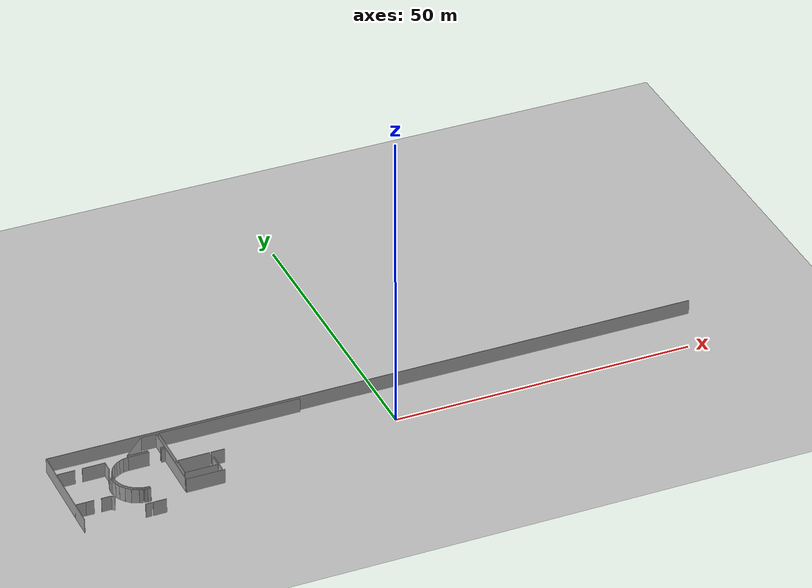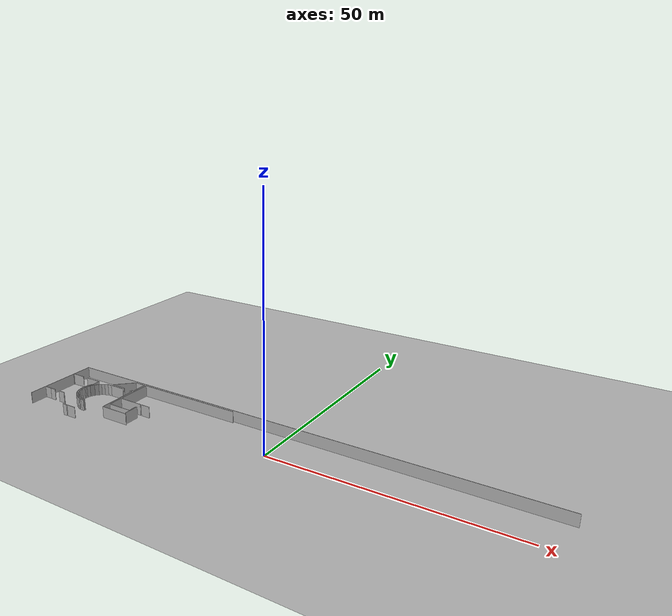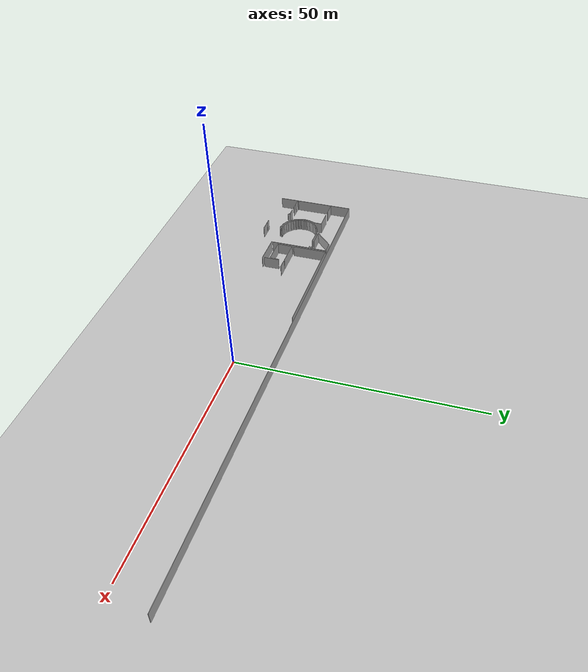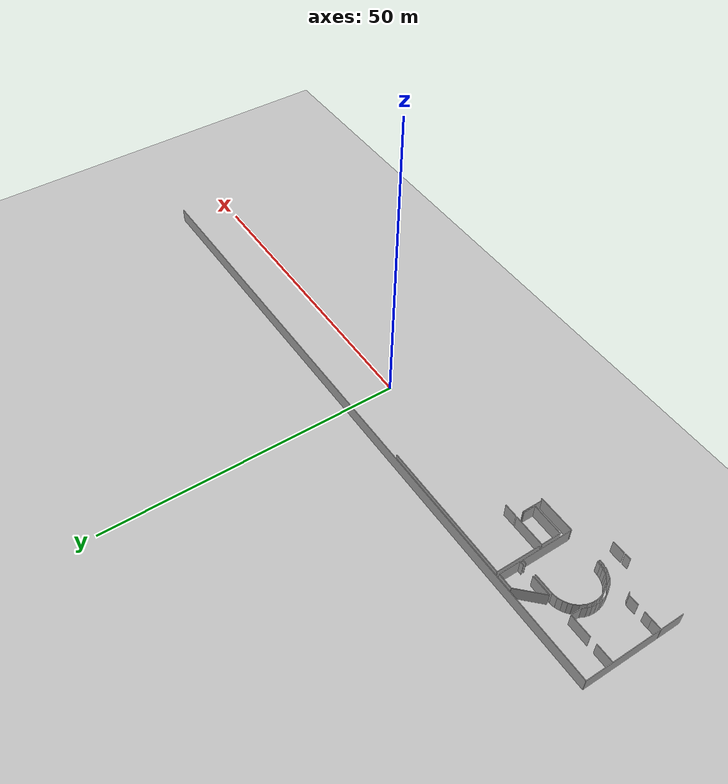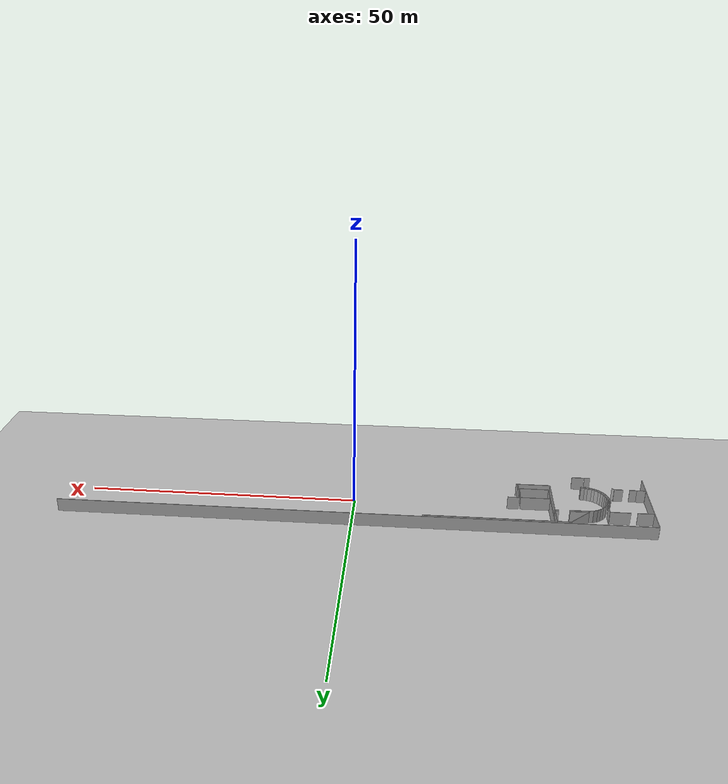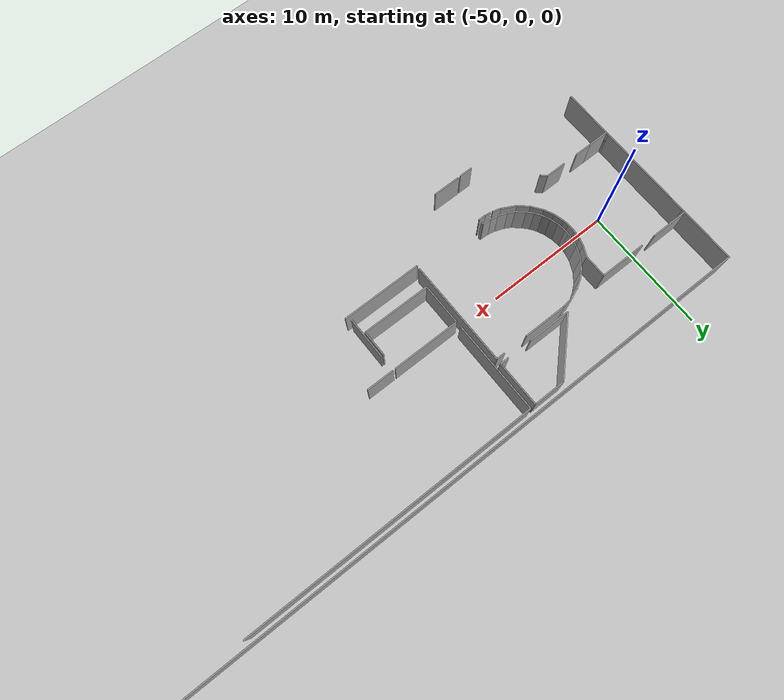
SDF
<sdf version="1.6">
 <world name="default">
  <model name="ground_plane">
   <static>1</static>
   <link name="link">
    <collision name="collision">
     <geometry><plane><normal>0 0 1</normal><size>100 100</size></plane></geometry>
     <surface><friction><ode><mu>100</mu><mu2>50</mu2></ode></friction></surface>
    </collision>
    <visual name="visual">
     <cast_shadows>0</cast_shadows>
     <geometry><plane><normal>0 0 1</normal><size>100 100</size></plane></geometry>
     <material>
      <script><uri>file://media/materials/scripts/gazebo.material</uri><name>Gazebo/Grey</name></script>
     </material>
    </visual>
   </link>
  </model>
  <model name="50041175">
   <static>1</static>
   <link name="Wall_0">
    <collision name="Wall_0_Collision">
     <geometry><box><size>1.6562662837 0.1 2.5</size></box></geometry>
     <pose>0.828133141848 0 1.25 0 0 0</pose>
    </collision>
    <visual name="Wall_0_Visual">
     <pose>0.828133141848 0 1.25 0 0 0</pose>
     <geometry><box><size>1.6562662837 0.1 2.5</size></box></geometry>
     <material>
      <script><uri>file://media/materials/scripts/gazebo.material</uri><name>Gazebo/Grey</name></script>
      <ambient>1 1 1 1</ambient>
     </material>
    </visual>
    <pose>1.6562662837 -12.7340086169 0 0 0 3.14159265359</pose>
   </link>
   <link name="Wall_1">
    <collision name="Wall_1_Collision">
     <geometry><box><size>0.231689183178 0.1 2.5</size></box></geometry>
     <pose>0.115844591589 0 1.25 0 0 0</pose>
    </collision>
    <visual name="Wall_1_Visual">
     <pose>0.115844591589 0 1.25 0 0 0</pose>
     <geometry><box><size>0.231689183178 0.1 2.5</size></box></geometry>
     <material>
      <script><uri>file://media/materials/scripts/gazebo.material</uri><name>Gazebo/Grey</name></script>
      <ambient>1 1 1 1</ambient>
     </material>
    </visual>
    <pose>0.0 -12.7340086169 0 0 0 1.57079632679</pose>
   </link>
   <link name="Wall_2">
    <collision name="Wall_2_Collision">
     <geometry><box><size>0.238806349529 0.1 2.5</size></box></geometry>
     <pose>0.119403174765 0 1.25 0 0 0</pose>
    </collision>
    <visual name="Wall_2_Visual">
     <pose>0.119403174765 0 1.25 0 0 0</pose>
     <geometry><box><size>0.238806349529 0.1 2.5</size></box></geometry>
     <material>
      <script><uri>file://media/materials/scripts/gazebo.material</uri><name>Gazebo/Grey</name></script>
      <ambient>1 1 1 1</ambient>
     </material>
    </visual>
    <pose>0.0 -4.70190511292 0 0 0 1.57079632679</pose>
   </link>
   <link name="Wall_3">
    <collision name="Wall_3_Collision">
     <geometry><box><size>2.970146029 0.1 2.5</size></box></geometry>
     <pose>1.4850730145 0 1.25 0 0 0</pose>
    </collision>
    <visual name="Wall_3_Visual">
     <pose>1.4850730145 0 1.25 0 0 0</pose>
     <geometry><box><size>2.970146029 0.1 2.5</size></box></geometry>
     <material>
      <script><uri>file://media/materials/scripts/gazebo.material</uri><name>Gazebo/Grey</name></script>
      <ambient>1 1 1 1</ambient>
     </material>
    </visual>
    <pose>0.0 -4.46309876339 0 0 0 0.0</pose>
   </link>
   <link name="Wall_4">
    <collision name="Wall_4_Collision">
     <geometry><box><size>3.68122720283 0.1 2.5</size></box></geometry>
     <pose>1.84061360141 0 1.25 0 0 0</pose>
    </collision>
    <visual name="Wall_4_Visual">
     <pose>1.84061360141 0 1.25 0 0 0</pose>
     <geometry><box><size>3.68122720283 0.1 2.5</size></box></geometry>
     <material>
      <script><uri>file://media/materials/scripts/gazebo.material</uri><name>Gazebo/Grey</name></script>
      <ambient>1 1 1 1</ambient>
     </material>
    </visual>
    <pose>4.14422429241 -4.46309876339 0 0 0 0.0</pose>
   </link>
   <link name="Wall_5">
    <collision name="Wall_5_Collision">
     <geometry><box><size>1.7719202369 0.1 2.5</size></box></geometry>
     <pose>0.88596011845 0 1.25 0 0 0</pose>
    </collision>
    <visual name="Wall_5_Visual">
     <pose>0.88596011845 0 1.25 0 0 0</pose>
     <geometry><box><size>1.7719202369 0.1 2.5</size></box></geometry>
     <material>
      <script><uri>file://media/materials/scripts/gazebo.material</uri><name>Gazebo/Grey</name></script>
      <ambient>1 1 1 1</ambient>
     </material>
    </visual>
    <pose>7.82545149524 -4.46309876339 0 0 0 -1.57079632679</pose>
   </link>
   <link name="Wall_6">
    <collision name="Wall_6_Collision">
     <geometry><box><size>0.846830648124 0.1 2.5</size></box></geometry>
     <pose>0.423415324062 0 1.25 0 0 0</pose>
    </collision>
    <visual name="Wall_6_Visual">
     <pose>0.423415324062 0 1.25 0 0 0</pose>
     <geometry><box><size>0.846830648124 0.1 2.5</size></box></geometry>
     <material>
      <script><uri>file://media/materials/scripts/gazebo.material</uri><name>Gazebo/Grey</name></script>
      <ambient>1 1 1 1</ambient>
     </material>
    </visual>
    <pose>7.82545149524 -6.23501900029 0 0 0 -2.01377018992</pose>
   </link>
   <link name="Wall_7">
    <collision name="Wall_7_Collision">
     <geometry><box><size>0.615985382137 0.1 2.5</size></box></geometry>
     <pose>0.307992691069 0 1.25 0 0 0</pose>
    </collision>
    <visual name="Wall_7_Visual">
     <pose>0.307992691069 0 1.25 0 0 0</pose>
     <geometry><box><size>0.615985382137 0.1 2.5</size></box></geometry>
     <material>
      <script><uri>file://media/materials/scripts/gazebo.material</uri><name>Gazebo/Grey</name></script>
      <ambient>1 1 1 1</ambient>
     </material>
    </visual>
    <pose>7.46247601134 -7.00011438303 0 0 0 -1.87029642608</pose>
   </link>
   <link name="Wall_8">
    <collision name="Wall_8_Collision">
     <geometry><box><size>0.661872701431 0.1 2.5</size></box></geometry>
     <pose>0.330936350716 0 1.25 0 0 0</pose>
    </collision>
    <visual name="Wall_8_Visual">
     <pose>0.330936350716 0 1.25 0 0 0</pose>
     <geometry><box><size>0.661872701431 0.1 2.5</size></box></geometry>
     <material>
      <script><uri>file://media/materials/scripts/gazebo.material</uri><name>Gazebo/Grey</name></script>
      <ambient>1 1 1 1</ambient>
     </material>
    </visual>
    <pose>7.28073408487 -7.58867862181 0 0 0 -1.72502234225</pose>
   </link>
   <link name="Wall_9">
    <collision name="Wall_9_Collision">
     <geometry><box><size>0.646685976722 0.1 2.5</size></box></geometry>
     <pose>0.323342988361 0 1.25 0 0 0</pose>
    </collision>
    <visual name="Wall_9_Visual">
     <pose>0.323342988361 0 1.25 0 0 0</pose>
     <geometry><box><size>0.646685976722 0.1 2.5</size></box></geometry>
     <material>
      <script><uri>file://media/materials/scripts/gazebo.material</uri><name>Gazebo/Grey</name></script>
      <ambient>1 1 1 1</ambient>
     </material>
    </visual>
    <pose>7.17906027986 -8.24269537257 0 0 0 -1.58199868835</pose>
   </link>
   <link name="Wall_10">
    <collision name="Wall_10_Collision">
     <geometry><box><size>0.439904652623 0.1 2.5</size></box></geometry>
     <pose>0.219952326311 0 1.25 0 0 0</pose>
    </collision>
    <visual name="Wall_10_Visual">
     <pose>0.219952326311 0 1.25 0 0 0</pose>
     <geometry><box><size>0.439904652623 0.1 2.5</size></box></geometry>
     <material>
      <script><uri>file://media/materials/scripts/gazebo.material</uri><name>Gazebo/Grey</name></script>
      <ambient>1 1 1 1</ambient>
     </material>
    </visual>
    <pose>7.17181602125 -8.88934077247 0 0 0 -1.43837843584</pose>
   </link>
   <link name="Wall_11">
    <collision name="Wall_11_Collision">
     <geometry><box><size>0.838824392635 0.1 2.5</size></box></geometry>
     <pose>0.419412196318 0 1.25 0 0 0</pose>
    </collision>
    <visual name="Wall_11_Visual">
     <pose>0.419412196318 0 1.25 0 0 0</pose>
     <geometry><box><size>0.838824392635 0.1 2.5</size></box></geometry>
     <material>
      <script><uri>file://media/materials/scripts/gazebo.material</uri><name>Gazebo/Grey</name></script>
      <ambient>1 1 1 1</ambient>
     </material>
    </visual>
    <pose>7.22989718236 -9.32539430373 0 0 0 -1.32578091653</pose>
   </link>
   <link name="Wall_12">
    <collision name="Wall_12_Collision">
     <geometry><box><size>0.809514762314 0.1 2.5</size></box></geometry>
     <pose>0.404757381157 0 1.25 0 0 0</pose>
    </collision>
    <visual name="Wall_12_Visual">
     <pose>0.404757381157 0 1.25 0 0 0</pose>
     <geometry><box><size>0.809514762314 0.1 2.5</size></box></geometry>
     <material>
      <script><uri>file://media/materials/scripts/gazebo.material</uri><name>Gazebo/Grey</name></script>
      <ambient>1 1 1 1</ambient>
     </material>
    </visual>
    <pose>7.43337188465 -10.1391660206 0 0 0 -1.13530731927</pose>
   </link>
   <link name="Wall_13">
    <collision name="Wall_13_Collision">
     <geometry><box><size>0.988325124962 0.1 2.5</size></box></geometry>
     <pose>0.494162562481 0 1.25 0 0 0</pose>
    </collision>
    <visual name="Wall_13_Visual">
     <pose>0.494162562481 0 1.25 0 0 0</pose>
     <geometry><box><size>0.988325124962 0.1 2.5</size></box></geometry>
     <material>
      <script><uri>file://media/materials/scripts/gazebo.material</uri><name>Gazebo/Grey</name></script>
      <ambient>1 1 1 1</ambient>
     </material>
    </visual>
    <pose>7.77486877725 -10.8731238006 0 0 0 -0.941981131605</pose>
   </link>
   <link name="Wall_14">
    <collision name="Wall_14_Collision">
     <geometry><box><size>0.98253685153 0.1 2.5</size></box></geometry>
     <pose>0.491268425765 0 1.25 0 0 0</pose>
    </collision>
    <visual name="Wall_14_Visual">
     <pose>0.491268425765 0 1.25 0 0 0</pose>
     <geometry><box><size>0.98253685153 0.1 2.5</size></box></geometry>
     <material>
      <script><uri>file://media/materials/scripts/gazebo.material</uri><name>Gazebo/Grey</name></script>
      <ambient>1 1 1 1</ambient>
     </material>
    </visual>
    <pose>8.35618875742 -11.6724070002 0 0 0 -0.738276218378</pose>
   </link>
   <link name="Wall_15">
    <collision name="Wall_15_Collision">
     <geometry><box><size>1.1946351515 0.1 2.5</size></box></geometry>
     <pose>0.597317575752 0 1.25 0 0 0</pose>
    </collision>
    <visual name="Wall_15_Visual">
     <pose>0.597317575752 0 1.25 0 0 0</pose>
     <geometry><box><size>1.1946351515 0.1 2.5</size></box></geometry>
     <material>
      <script><uri>file://media/materials/scripts/gazebo.material</uri><name>Gazebo/Grey</name></script>
      <ambient>1 1 1 1</ambient>
     </material>
    </visual>
    <pose>9.08290227876 -12.3336680096 0 0 0 -0.475494606704</pose>
   </link>
   <link name="Wall_16">
    <collision name="Wall_16_Collision">
     <geometry><box><size>0.620881470011 0.1 2.5</size></box></geometry>
     <pose>0.310440735005 0 1.25 0 0 0</pose>
    </collision>
    <visual name="Wall_16_Visual">
     <pose>0.310440735005 0 1.25 0 0 0</pose>
     <geometry><box><size>0.620881470011 0.1 2.5</size></box></geometry>
     <material>
      <script><uri>file://media/materials/scripts/gazebo.material</uri><name>Gazebo/Grey</name></script>
      <ambient>1 1 1 1</ambient>
     </material>
    </visual>
    <pose>10.1450122644 -12.8805459883 0 0 0 -0.282967135303</pose>
   </link>
   <link name="Wall_17">
    <collision name="Wall_17_Collision">
     <geometry><box><size>1.03326004347 0.1 2.5</size></box></geometry>
     <pose>0.516630021733 0 1.25 0 0 0</pose>
    </collision>
    <visual name="Wall_17_Visual">
     <pose>0.516630021733 0 1.25 0 0 0</pose>
     <geometry><box><size>1.03326004347 0.1 2.5</size></box></geometry>
     <material>
      <script><uri>file://media/materials/scripts/gazebo.material</uri><name>Gazebo/Grey</name></script>
      <ambient>1 1 1 1</ambient>
     </material>
    </visual>
    <pose>10.7412020386 -16.6847984952 0 0 0 3.14159265359</pose>
   </link>
   <link name="Wall_18">
    <collision name="Wall_18_Collision">
     <geometry><box><size>0.562572519334 0.1 2.5</size></box></geometry>
     <pose>0.281286259667 0 1.25 0 0 0</pose>
    </collision>
    <visual name="Wall_18_Visual">
     <pose>0.281286259667 0 1.25 0 0 0</pose>
     <geometry><box><size>0.562572519334 0.1 2.5</size></box></geometry>
     <material>
      <script><uri>file://media/materials/scripts/gazebo.material</uri><name>Gazebo/Grey</name></script>
      <ambient>1 1 1 1</ambient>
     </material>
    </visual>
    <pose>6.16905811929 -13.1409580214 0 0 0 2.35683346774</pose>
   </link>
   <link name="Wall_19">
    <collision name="Wall_19_Collision">
     <geometry><box><size>1.62500158865 0.1 2.5</size></box></geometry>
     <pose>0.812500794327 0 1.25 0 0 0</pose>
    </collision>
    <visual name="Wall_19_Visual">
     <pose>0.812500794327 0 1.25 0 0 0</pose>
     <geometry><box><size>1.62500158865 0.1 2.5</size></box></geometry>
     <material>
      <script><uri>file://media/materials/scripts/gazebo.material</uri><name>Gazebo/Grey</name></script>
      <ambient>1 1 1 1</ambient>
     </material>
    </visual>
    <pose>5.77100517265 -12.7434134438 0 0 0 3.14159265359</pose>
   </link>
   <link name="Wall_20">
    <collision name="Wall_20_Collision">
     <geometry><box><size>1.30577971029 0.1 2.5</size></box></geometry>
     <pose>0.652889855147 0 1.25 0 0 0</pose>
    </collision>
    <visual name="Wall_20_Visual">
     <pose>0.652889855147 0 1.25 0 0 0</pose>
     <geometry><box><size>1.30577971029 0.1 2.5</size></box></geometry>
     <material>
      <script><uri>file://media/materials/scripts/gazebo.material</uri><name>Gazebo/Grey</name></script>
      <ambient>1 1 1 1</ambient>
     </material>
    </visual>
    <pose>2.9620121246 -12.7434134438 0 0 0 3.13439013068</pose>
   </link>
   <link name="Wall_21">
    <collision name="Wall_21_Collision">
     <geometry><box><size>0.36281847588 0.1 2.5</size></box></geometry>
     <pose>0.18140923794 0 1.25 0 0 0</pose>
    </collision>
    <visual name="Wall_21_Visual">
     <pose>0.18140923794 0 1.25 0 0 0</pose>
     <geometry><box><size>0.36281847588 0.1 2.5</size></box></geometry>
     <material>
      <script><uri>file://media/materials/scripts/gazebo.material</uri><name>Gazebo/Grey</name></script>
      <ambient>1 1 1 1</ambient>
     </material>
    </visual>
    <pose>7.64993708933 -8.35364691229 0 0 0 1.47255674269</pose>
   </link>
   <link name="Wall_22">
    <collision name="Wall_22_Collision">
     <geometry><box><size>0.719627656 0.1 2.5</size></box></geometry>
     <pose>0.359813828 0 1.25 0 0 0</pose>
    </collision>
    <visual name="Wall_22_Visual">
     <pose>0.359813828 0 1.25 0 0 0</pose>
     <geometry><box><size>0.719627656 0.1 2.5</size></box></geometry>
     <material>
      <script><uri>file://media/materials/scripts/gazebo.material</uri><name>Gazebo/Grey</name></script>
      <ambient>1 1 1 1</ambient>
     </material>
    </visual>
    <pose>7.68552292109 -7.99257781223 0 0 0 1.34856438238</pose>
   </link>
   <link name="Wall_23">
    <collision name="Wall_23_Collision">
     <geometry><box><size>1.03548684681 0.1 2.5</size></box></geometry>
     <pose>0.517743423406 0 1.25 0 0 0</pose>
    </collision>
    <visual name="Wall_23_Visual">
     <pose>0.517743423406 0 1.25 0 0 0</pose>
     <geometry><box><size>1.03548684681 0.1 2.5</size></box></geometry>
     <material>
      <script><uri>file://media/materials/scripts/gazebo.material</uri><name>Gazebo/Grey</name></script>
      <ambient>1 1 1 1</ambient>
     </material>
    </visual>
    <pose>7.84413405691 -7.29064728086 0 0 0 1.13152208163</pose>
   </link>
   <link name="Wall_24">
    <collision name="Wall_24_Collision">
     <geometry><box><size>0.887161138428 0.1 2.5</size></box></geometry>
     <pose>0.443580569214 0 1.25 0 0 0</pose>
    </collision>
    <visual name="Wall_24_Visual">
     <pose>0.443580569214 0 1.25 0 0 0</pose>
     <geometry><box><size>0.887161138428 0.1 2.5</size></box></geometry>
     <material>
      <script><uri>file://media/materials/scripts/gazebo.material</uri><name>Gazebo/Grey</name></script>
      <ambient>1 1 1 1</ambient>
     </material>
    </visual>
    <pose>8.28450872488 -6.35346898313 0 0 0 0.8775070857</pose>
   </link>
   <link name="Wall_25">
    <collision name="Wall_25_Collision">
     <geometry><box><size>0.648414988856 0.1 2.5</size></box></geometry>
     <pose>0.324207494428 0 1.25 0 0 0</pose>
    </collision>
    <visual name="Wall_25_Visual">
     <pose>0.324207494428 0 1.25 0 0 0</pose>
     <geometry><box><size>0.648414988856 0.1 2.5</size></box></geometry>
     <material>
      <script><uri>file://media/materials/scripts/gazebo.material</uri><name>Gazebo/Grey</name></script>
      <ambient>1 1 1 1</ambient>
     </material>
    </visual>
    <pose>8.8514672801 -5.67111065923 0 0 0 0.690873512645</pose>
   </link>
   <link name="Wall_26">
    <collision name="Wall_26_Collision">
     <geometry><box><size>0.698898147814 0.1 2.5</size></box></geometry>
     <pose>0.349449073907 0 1.25 0 0 0</pose>
    </collision>
    <visual name="Wall_26_Visual">
     <pose>0.349449073907 0 1.25 0 0 0</pose>
     <geometry><box><size>0.698898147814 0.1 2.5</size></box></geometry>
     <material>
      <script><uri>file://media/materials/scripts/gazebo.material</uri><name>Gazebo/Grey</name></script>
      <ambient>1 1 1 1</ambient>
     </material>
    </visual>
    <pose>9.35119403175 -5.2579337341 0 0 0 0.531687187303</pose>
   </link>
   <link name="Wall_27">
    <collision name="Wall_27_Collision">
     <geometry><box><size>0.801340088225 0.1 2.5</size></box></geometry>
     <pose>0.400670044113 0 1.25 0 0 0</pose>
    </collision>
    <visual name="Wall_27_Visual">
     <pose>0.400670044113 0 1.25 0 0 0</pose>
     <geometry><box><size>0.801340088225 0.1 2.5</size></box></geometry>
     <material>
      <script><uri>file://media/materials/scripts/gazebo.material</uri><name>Gazebo/Grey</name></script>
      <ambient>1 1 1 1</ambient>
     </material>
    </visual>
    <pose>9.95361132646 -4.90360052362 0 0 0 0.385689814226</pose>
   </link>
   <link name="Wall_28">
    <collision name="Wall_28_Collision">
     <geometry><box><size>0.866344135107 0.1 2.5</size></box></geometry>
     <pose>0.433172067554 0 1.25 0 0 0</pose>
    </collision>
    <visual name="Wall_28_Visual">
     <pose>0.433172067554 0 1.25 0 0 0</pose>
     <geometry><box><size>0.866344135107 0.1 2.5</size></box></geometry>
     <material>
      <script><uri>file://media/materials/scripts/gazebo.material</uri><name>Gazebo/Grey</name></script>
      <ambient>1 1 1 1</ambient>
     </material>
    </visual>
    <pose>10.6960842876 -4.60213769175 0 0 0 0.143079602133</pose>
   </link>
   <link name="Wall_29">
    <collision name="Wall_29_Collision">
     <geometry><box><size>3.39959076293 0.1 2.5</size></box></geometry>
     <pose>1.69979538147 0 1.25 0 0 0</pose>
    </collision>
    <visual name="Wall_29_Visual">
     <pose>1.69979538147 0 1.25 0 0 0</pose>
     <geometry><box><size>3.39959076293 0.1 2.5</size></box></geometry>
     <material>
      <script><uri>file://media/materials/scripts/gazebo.material</uri><name>Gazebo/Grey</name></script>
      <ambient>1 1 1 1</ambient>
     </material>
    </visual>
    <pose>11.5535757406 -4.47860401866 0 0 0 0.0</pose>
   </link>
   <link name="Wall_30">
    <collision name="Wall_30_Collision">
     <geometry><box><size>0.673716050481 0.1 2.5</size></box></geometry>
     <pose>0.336858025241 0 1.25 0 0 0</pose>
    </collision>
    <visual name="Wall_30_Visual">
     <pose>0.336858025241 0 1.25 0 0 0</pose>
     <geometry><box><size>0.673716050481 0.1 2.5</size></box></geometry>
     <material>
      <script><uri>file://media/materials/scripts/gazebo.material</uri><name>Gazebo/Grey</name></script>
      <ambient>1 1 1 1</ambient>
     </material>
    </visual>
    <pose>16.9125478185 -4.47860401866 0 0 0 0.0</pose>
   </link>
   <link name="Wall_31">
    <collision name="Wall_31_Collision">
     <geometry><box><size>8.4236747455 0.1 2.5</size></box></geometry>
     <pose>4.21183737275 0 1.25 0 0 0</pose>
    </collision>
    <visual name="Wall_31_Visual">
     <pose>4.21183737275 0 1.25 0 0 0</pose>
     <geometry><box><size>8.4236747455 0.1 2.5</size></box></geometry>
     <material>
      <script><uri>file://media/materials/scripts/gazebo.material</uri><name>Gazebo/Grey</name></script>
      <ambient>1 1 1 1</ambient>
     </material>
    </visual>
    <pose>17.5862638689 -4.47860401866 0 0 0 -1.57079632679</pose>
   </link>
   <link name="Wall_32">
    <collision name="Wall_32_Collision">
     <geometry><box><size>0.180216819389 0.1 2.5</size></box></geometry>
     <pose>0.0901084096946 0 1.25 0 0 0</pose>
    </collision>
    <visual name="Wall_32_Visual">
     <pose>0.0901084096946 0 1.25 0 0 0</pose>
     <geometry><box><size>0.180216819389 0.1 2.5</size></box></geometry>
     <material>
      <script><uri>file://media/materials/scripts/gazebo.material</uri><name>Gazebo/Grey</name></script>
      <ambient>1 1 1 1</ambient>
     </material>
    </visual>
    <pose>11.9002834157 -12.9022787642 0 0 0 1.57079632679</pose>
   </link>
   <link name="Wall_33">
    <collision name="Wall_33_Collision">
     <geometry><box><size>0.659679686485 0.1 2.5</size></box></geometry>
     <pose>0.329839843242 0 1.25 0 0 0</pose>
    </collision>
    <visual name="Wall_33_Visual">
     <pose>0.329839843242 0 1.25 0 0 0</pose>
     <geometry><box><size>0.659679686485 0.1 2.5</size></box></geometry>
     <material>
      <script><uri>file://media/materials/scripts/gazebo.material</uri><name>Gazebo/Grey</name></script>
      <ambient>1 1 1 1</ambient>
     </material>
    </visual>
    <pose>11.9002834157 -12.7220619448 0 0 0 3.08762234943</pose>
   </link>
   <link name="Wall_34">
    <collision name="Wall_34_Collision">
     <geometry><box><size>0.57892062884 0.1 2.5</size></box></geometry>
     <pose>0.28946031442 0 1.25 0 0 0</pose>
    </collision>
    <visual name="Wall_34_Visual">
     <pose>0.28946031442 0 1.25 0 0 0</pose>
     <geometry><box><size>0.57892062884 0.1 2.5</size></box></geometry>
     <material>
      <script><uri>file://media/materials/scripts/gazebo.material</uri><name>Gazebo/Grey</name></script>
      <ambient>1 1 1 1</ambient>
     </material>
    </visual>
    <pose>11.2415642515 -12.686476113 0 0 0 2.95612333128</pose>
   </link>
   <link name="Wall_35">
    <collision name="Wall_35_Collision">
     <geometry><box><size>0.75556586854 0.1 2.5</size></box></geometry>
     <pose>0.37778293427 0 1.25 0 0 0</pose>
    </collision>
    <visual name="Wall_35_Visual">
     <pose>0.37778293427 0 1.25 0 0 0</pose>
     <geometry><box><size>0.75556586854 0.1 2.5</size></box></geometry>
     <material>
      <script><uri>file://media/materials/scripts/gazebo.material</uri><name>Gazebo/Grey</name></script>
      <ambient>1 1 1 1</ambient>
     </material>
    </visual>
    <pose>10.6725722202 -12.5797186177 0 0 0 2.79973414787</pose>
   </link>
   <link name="Wall_36">
    <collision name="Wall_36_Collision">
     <geometry><box><size>0.556449449577 0.1 2.5</size></box></geometry>
     <pose>0.278224724788 0 1.25 0 0 0</pose>
    </collision>
    <visual name="Wall_36_Visual">
     <pose>0.278224724788 0 1.25 0 0 0</pose>
     <geometry><box><size>0.556449449577 0.1 2.5</size></box></geometry>
     <material>
      <script><uri>file://media/materials/scripts/gazebo.material</uri><name>Gazebo/Grey</name></script>
      <ambient>1 1 1 1</ambient>
     </material>
    </visual>
    <pose>9.96072849281 -12.326423751 0 0 0 2.62040682433</pose>
   </link>
   <link name="Wall_37">
    <collision name="Wall_37_Collision">
     <geometry><box><size>0.796480954315 0.1 2.5</size></box></geometry>
     <pose>0.398240477157 0 1.25 0 0 0</pose>
    </collision>
    <visual name="Wall_37_Visual">
     <pose>0.398240477157 0 1.25 0 0 0</pose>
     <geometry><box><size>0.796480954315 0.1 2.5</size></box></geometry>
     <material>
      <script><uri>file://media/materials/scripts/gazebo.material</uri><name>Gazebo/Grey</name></script>
      <ambient>1 1 1 1</ambient>
     </material>
    </visual>
    <pose>9.47815919576 -12.0493626323 0 0 0 2.4368432702</pose>
   </link>
   <link name="Wall_38">
    <collision name="Wall_38_Collision">
     <geometry><box><size>0.595609380929 0.1 2.5</size></box></geometry>
     <pose>0.297804690464 0 1.25 0 0 0</pose>
    </collision>
    <visual name="Wall_38_Visual">
     <pose>0.297804690464 0 1.25 0 0 0</pose>
     <geometry><box><size>0.595609380929 0.1 2.5</size></box></geometry>
     <material>
      <script><uri>file://media/materials/scripts/gazebo.material</uri><name>Gazebo/Grey</name></script>
      <ambient>1 1 1 1</ambient>
     </material>
    </visual>
    <pose>8.87142076433 -11.5333680719 0 0 0 2.29958283771</pose>
   </link>
   <link name="Wall_39">
    <collision name="Wall_39_Collision">
     <geometry><box><size>0.598957380622 0.1 2.5</size></box></geometry>
     <pose>0.299478690311 0 1.25 0 0 0</pose>
    </collision>
    <visual name="Wall_39_Visual">
     <pose>0.299478690311 0 1.25 0 0 0</pose>
     <geometry><box><size>0.598957380622 0.1 2.5</size></box></geometry>
     <material>
      <script><uri>file://media/materials/scripts/gazebo.material</uri><name>Gazebo/Grey</name></script>
      <ambient>1 1 1 1</ambient>
     </material>
    </visual>
    <pose>8.47476583252 -11.089053544 0 0 0 2.16309504327</pose>
   </link>
   <link name="Wall_40">
    <collision name="Wall_40_Collision">
     <geometry><box><size>0.629272585491 0.1 2.5</size></box></geometry>
     <pose>0.314636292745 0 1.25 0 0 0</pose>
    </collision>
    <visual name="Wall_40_Visual">
     <pose>0.314636292745 0 1.25 0 0 0</pose>
     <geometry><box><size>0.629272585491 0.1 2.5</size></box></geometry>
     <material>
      <script><uri>file://media/materials/scripts/gazebo.material</uri><name>Gazebo/Grey</name></script>
      <ambient>1 1 1 1</ambient>
     </material>
    </visual>
    <pose>8.14038610627 -10.592122822 0 0 0 1.97669585645</pose>
   </link>
   <link name="Wall_41">
    <collision name="Wall_41_Collision">
     <geometry><box><size>0.627945076952 0.1 2.5</size></box></geometry>
     <pose>0.313972538476 0 1.25 0 0 0</pose>
    </collision>
    <visual name="Wall_41_Visual">
     <pose>0.313972538476 0 1.25 0 0 0</pose>
     <geometry><box><size>0.627945076952 0.1 2.5</size></box></geometry>
     <material>
      <script><uri>file://media/materials/scripts/gazebo.material</uri><name>Gazebo/Grey</name></script>
      <ambient>1 1 1 1</ambient>
     </material>
    </visual>
    <pose>7.89192074527 -10.0139801482 0 0 0 1.84965200465</pose>
   </link>
   <link name="Wall_42">
    <collision name="Wall_42_Collision">
     <geometry><box><size>0.695092077512 0.1 2.5</size></box></geometry>
     <pose>0.347546038756 0 1.25 0 0 0</pose>
    </collision>
    <visual name="Wall_42_Visual">
     <pose>0.347546038756 0 1.25 0 0 0</pose>
     <geometry><box><size>0.695092077512 0.1 2.5</size></box></geometry>
     <material>
      <script><uri>file://media/materials/scripts/gazebo.material</uri><name>Gazebo/Grey</name></script>
      <ambient>1 1 1 1</ambient>
     </material>
    </visual>
    <pose>7.71907527674 -9.41029193091 0 0 0 1.69655740741</pose>
   </link>
   <link name="Wall_43">
    <collision name="Wall_43_Collision">
     <geometry><box><size>0.367485846985 0.1 2.5</size></box></geometry>
     <pose>0.183742923492 0 1.25 0 0 0</pose>
    </collision>
    <visual name="Wall_43_Visual">
     <pose>0.183742923492 0 1.25 0 0 0</pose>
     <geometry><box><size>0.367485846985 0.1 2.5</size></box></geometry>
     <material>
      <script><uri>file://media/materials/scripts/gazebo.material</uri><name>Gazebo/Grey</name></script>
      <ambient>1 1 1 1</ambient>
     </material>
    </visual>
    <pose>7.63188998894 -8.7206893484 0 0 0 1.52166691779</pose>
   </link>
   <link name="Wall_44">
    <collision name="Wall_44_Collision">
     <geometry><box><size>3.33553626578 0.1 2.5</size></box></geometry>
     <pose>1.66776813289 0 1.25 0 0 0</pose>
    </collision>
    <visual name="Wall_44_Visual">
     <pose>1.66776813289 0 1.25 0 0 0</pose>
     <geometry><box><size>3.33553626578 0.1 2.5</size></box></geometry>
     <material>
      <script><uri>file://media/materials/scripts/gazebo.material</uri><name>Gazebo/Grey</name></script>
      <ambient>1 1 1 1</ambient>
     </material>
    </visual>
    <pose>23.5733258773 -12.8295819936 0 0 0 1.57079632679</pose>
   </link>
   <link name="Wall_45">
    <collision name="Wall_45_Collision">
     <geometry><box><size>2.18306368593 0.1 2.5</size></box></geometry>
     <pose>1.09153184296 0 1.25 0 0 0</pose>
    </collision>
    <visual name="Wall_45_Visual">
     <pose>1.09153184296 0 1.25 0 0 0</pose>
     <geometry><box><size>2.18306368593 0.1 2.5</size></box></geometry>
     <material>
      <script><uri>file://media/materials/scripts/gazebo.material</uri><name>Gazebo/Grey</name></script>
      <ambient>1 1 1 1</ambient>
     </material>
    </visual>
    <pose>23.5733258773 -8.23252799207 0 0 0 0.0</pose>
   </link>
   <link name="Wall_50">
    <collision name="Wall_50_Collision">
     <geometry><box><size>3.27859893497 0.1 2.5</size></box></geometry>
     <pose>1.63929946748 0 1.25 0 0 0</pose>
    </collision>
    <visual name="Wall_50_Visual">
     <pose>1.63929946748 0 1.25 0 0 0</pose>
     <geometry><box><size>3.27859893497 0.1 2.5</size></box></geometry>
     <material>
      <script><uri>file://media/materials/scripts/gazebo.material</uri><name>Gazebo/Grey</name></script>
      <ambient>1 1 1 1</ambient>
     </material>
    </visual>
    <pose>18.0352808103 -11.5094747277 0 0 0 1.57079632679</pose>
   </link>
   <link name="Wall_51">
    <collision name="Wall_51_Collision">
     <geometry><box><size>5.35744697076 0.1 2.5</size></box></geometry>
     <pose>2.67872348538 0 1.25 0 0 0</pose>
    </collision>
    <visual name="Wall_51_Visual">
     <pose>2.67872348538 0 1.25 0 0 0</pose>
     <geometry><box><size>5.35744697076 0.1 2.5</size></box></geometry>
     <material>
      <script><uri>file://media/materials/scripts/gazebo.material</uri><name>Gazebo/Grey</name></script>
      <ambient>1 1 1 1</ambient>
     </material>
    </visual>
    <pose>18.0352808103 -8.23087579274 0 0 0 0.0</pose>
   </link>
   <link name="Wall_52">
    <collision name="Wall_52_Collision">
     <geometry><box><size>2.0233087198 0.1 2.5</size></box></geometry>
     <pose>1.0116543599 0 1.25 0 0 0</pose>
    </collision>
    <visual name="Wall_52_Visual">
     <pose>1.0116543599 0 1.25 0 0 0</pose>
     <geometry><box><size>2.0233087198 0.1 2.5</size></box></geometry>
     <material>
      <script><uri>file://media/materials/scripts/gazebo.material</uri><name>Gazebo/Grey</name></script>
      <ambient>1 1 1 1</ambient>
     </material>
    </visual>
    <pose>23.3927277811 -9.51107609013 0 0 0 -1.57079632679</pose>
   </link>
   <link name="Wall_53">
    <collision name="Wall_53_Collision">
     <geometry><box><size>5.35750488163 0.1 2.5</size></box></geometry>
     <pose>2.67875244081 0 1.25 0 0 0</pose>
    </collision>
    <visual name="Wall_53_Visual">
     <pose>2.67875244081 0 1.25 0 0 0</pose>
     <geometry><box><size>5.35750488163 0.1 2.5</size></box></geometry>
     <material>
      <script><uri>file://media/materials/scripts/gazebo.material</uri><name>Gazebo/Grey</name></script>
      <ambient>1 1 1 1</ambient>
     </material>
    </visual>
    <pose>23.3927277811 -11.5343848099 0 0 0 3.13694306903</pose>
   </link>
   <link name="Wall_57">
    <collision name="Wall_57_Collision">
     <geometry><box><size>7.33589212409 0.1 2.5</size></box></geometry>
     <pose>3.66794606205 0 1.25 0 0 0</pose>
    </collision>
    <visual name="Wall_57_Visual">
     <pose>3.66794606205 0 1.25 0 0 0</pose>
     <geometry><box><size>7.33589212409 0.1 2.5</size></box></geometry>
     <material>
      <script><uri>file://media/materials/scripts/gazebo.material</uri><name>Gazebo/Grey</name></script>
      <ambient>1 1 1 1</ambient>
     </material>
    </visual>
    <pose>18.0304513046 -7.81401319218 0 0 0 1.57079632679</pose>
   </link>
   <link name="Wall_58">
    <collision name="Wall_58_Collision">
     <geometry><box><size>23.2799969498 0.1 2.5</size></box></geometry>
     <pose>11.6399984749 0 1.25 0 0 0</pose>
    </collision>
    <visual name="Wall_58_Visual">
     <pose>11.6399984749 0 1.25 0 0 0</pose>
     <geometry><box><size>23.2799969498 0.1 2.5</size></box></geometry>
     <material>
      <script><uri>file://media/materials/scripts/gazebo.material</uri><name>Gazebo/Grey</name></script>
      <ambient>1 1 1 1</ambient>
     </material>
    </visual>
    <pose>18.0304513046 -0.478121068083 0 0 0 0.0</pose>
   </link>
   <link name="Wall_168">
    <collision name="Wall_168_Collision">
     <geometry><box><size>2.16819389195 0.1 2.5</size></box></geometry>
     <pose>1.08409694597 0 1.25 0 0 0</pose>
    </collision>
    <visual name="Wall_168_Visual">
     <pose>1.08409694597 0 1.25 0 0 0</pose>
     <geometry><box><size>2.16819389195 0.1 2.5</size></box></geometry>
     <material>
      <script><uri>file://media/materials/scripts/gazebo.material</uri><name>Gazebo/Grey</name></script>
      <ambient>1 1 1 1</ambient>
     </material>
    </visual>
    <pose>13.082241399 -16.6739956534 0 0 0 3.14159265359</pose>
   </link>
   <link name="Wall_169">
    <collision name="Wall_169_Collision">
     <geometry><box><size>0.470008574356 0.1 2.5</size></box></geometry>
     <pose>0.235004287178 0 1.25 0 0 0</pose>
    </collision>
    <visual name="Wall_169_Visual">
     <pose>0.235004287178 0 1.25 0 0 0</pose>
     <geometry><box><size>0.470008574356 0.1 2.5</size></box></geometry>
     <material>
      <script><uri>file://media/materials/scripts/gazebo.material</uri><name>Gazebo/Grey</name></script>
      <ambient>1 1 1 1</ambient>
     </material>
    </visual>
    <pose>10.9140475071 -13.087197997 0 0 0 -0.141897054604</pose>
   </link>
   <link name="Wall_170">
    <collision name="Wall_170_Collision">
     <geometry><box><size>0.523493003571 0.1 2.5</size></box></geometry>
     <pose>0.261746501786 0 1.25 0 0 0</pose>
    </collision>
    <visual name="Wall_170_Visual">
     <pose>0.261746501786 0 1.25 0 0 0</pose>
     <geometry><box><size>0.523493003571 0.1 2.5</size></box></geometry>
     <material>
      <script><uri>file://media/materials/scripts/gazebo.material</uri><name>Gazebo/Grey</name></script>
      <ambient>1 1 1 1</ambient>
     </material>
    </visual>
    <pose>11.3793322573 -13.1536672471 0 0 0 0.0</pose>
   </link>
   <link name="Wall_171">
    <collision name="Wall_171_Collision">
     <geometry><box><size>0.0301208647357 0.1 2.5</size></box></geometry>
     <pose>0.0150604323679 0 1.25 0 0 0</pose>
    </collision>
    <visual name="Wall_171_Visual">
     <pose>0.0150604323679 0 1.25 0 0 0</pose>
     <geometry><box><size>0.0301208647357 0.1 2.5</size></box></geometry>
     <material>
      <script><uri>file://media/materials/scripts/gazebo.material</uri><name>Gazebo/Grey</name></script>
      <ambient>1 1 1 1</ambient>
     </material>
    </visual>
    <pose>11.9028252609 -13.1536672471 0 0 0 1.57079632679</pose>
   </link>
   <link name="Wall_172">
    <collision name="Wall_172_Collision">
     <geometry><box><size>0.0392715071871 0.1 2.5</size></box></geometry>
     <pose>0.0196357535935 0 1.25 0 0 0</pose>
    </collision>
    <visual name="Wall_172_Visual">
     <pose>0.0196357535935 0 1.25 0 0 0</pose>
     <geometry><box><size>0.0392715071871 0.1 2.5</size></box></geometry>
     <material>
      <script><uri>file://media/materials/scripts/gazebo.material</uri><name>Gazebo/Grey</name></script>
      <ambient>1 1 1 1</ambient>
     </material>
    </visual>
    <pose>17.5862638689 -13.1235463823 0 0 0 -1.57079632679</pose>
   </link>
   <link name="Wall_173">
    <collision name="Wall_173_Collision">
     <geometry><box><size>6.30530101801 0.1 2.5</size></box></geometry>
     <pose>3.152650509 0 1.25 0 0 0</pose>
    </collision>
    <visual name="Wall_173_Visual">
     <pose>3.152650509 0 1.25 0 0 0</pose>
     <geometry><box><size>6.30530101801 0.1 2.5</size></box></geometry>
     <material>
      <script><uri>file://media/materials/scripts/gazebo.material</uri><name>Gazebo/Grey</name></script>
      <ambient>1 1 1 1</ambient>
     </material>
    </visual>
    <pose>17.5862638689 -13.1628178895 0 0 0 0.0</pose>
   </link>
   <link name="Wall_184">
    <collision name="Wall_184_Collision">
     <geometry><box><size>5.00581619289 0.1 2.5</size></box></geometry>
     <pose>2.50290809645 0 1.25 0 0 0</pose>
    </collision>
    <visual name="Wall_184_Visual">
     <pose>2.50290809645 0 1.25 0 0 0</pose>
     <geometry><box><size>5.00581619289 0.1 2.5</size></box></geometry>
     <material>
      <script><uri>file://media/materials/scripts/gazebo.material</uri><name>Gazebo/Grey</name></script>
      <ambient>1 1 1 1</ambient>
     </material>
    </visual>
    <pose>11.5741646861 -4.03263729141 0 0 0 0.785685406217</pose>
   </link>
   <link name="Wall_185">
    <collision name="Wall_185_Collision">
     <geometry><box><size>2.48999148482 0.1 2.5</size></box></geometry>
     <pose>1.24499574241 0 1.25 0 0 0</pose>
    </collision>
    <visual name="Wall_185_Visual">
     <pose>1.24499574241 0 1.25 0 0 0</pose>
     <geometry><box><size>2.48999148482 0.1 2.5</size></box></geometry>
     <material>
      <script><uri>file://media/materials/scripts/gazebo.material</uri><name>Gazebo/Grey</name></script>
      <ambient>1 1 1 1</ambient>
     </material>
    </visual>
    <pose>15.1127943774 -0.491974124017 0 0 0 0.0</pose>
   </link>
   <link name="Wall_186">
    <collision name="Wall_186_Collision">
     <geometry><box><size>3.56862346377 0.1 2.5</size></box></geometry>
     <pose>1.78431173189 0 1.25 0 0 0</pose>
    </collision>
    <visual name="Wall_186_Visual">
     <pose>1.78431173189 0 1.25 0 0 0</pose>
     <geometry><box><size>3.56862346377 0.1 2.5</size></box></geometry>
     <material>
      <script><uri>file://media/materials/scripts/gazebo.material</uri><name>Gazebo/Grey</name></script>
      <ambient>1 1 1 1</ambient>
     </material>
    </visual>
    <pose>17.6027858623 -0.491974124017 0 0 0 -1.57079632679</pose>
   </link>
   <link name="Wall_187">
    <collision name="Wall_187_Collision">
     <geometry><box><size>0.689729674771 0.1 2.5</size></box></geometry>
     <pose>0.344864837385 0 1.25 0 0 0</pose>
    </collision>
    <visual name="Wall_187_Visual">
     <pose>0.344864837385 0 1.25 0 0 0</pose>
     <geometry><box><size>0.689729674771 0.1 2.5</size></box></geometry>
     <material>
      <script><uri>file://media/materials/scripts/gazebo.material</uri><name>Gazebo/Grey</name></script>
      <ambient>1 1 1 1</ambient>
     </material>
    </visual>
    <pose>17.6027858623 -4.06059758779 0 0 0 3.14159265359</pose>
   </link>
   <link name="Wall_188">
    <collision name="Wall_188_Collision">
     <geometry><box><size>3.36590035687 0.1 2.5</size></box></geometry>
     <pose>1.68295017844 0 1.25 0 0 0</pose>
    </collision>
    <visual name="Wall_188_Visual">
     <pose>1.68295017844 0 1.25 0 0 0</pose>
     <geometry><box><size>3.36590035687 0.1 2.5</size></box></geometry>
     <material>
      <script><uri>file://media/materials/scripts/gazebo.material</uri><name>Gazebo/Grey</name></script>
      <ambient>1 1 1 1</ambient>
     </material>
    </visual>
    <pose>14.9399489089 -4.06059758779 0 0 0 3.13328562873</pose>
   </link>
   <link name="Wall_191">
    <collision name="Wall_191_Collision">
     <geometry><box><size>16.6847984952 0.1 2.5</size></box></geometry>
     <pose>8.34239924761 0 1.25 0 0 0</pose>
    </collision>
    <visual name="Wall_191_Visual">
     <pose>8.34239924761 0 1.25 0 0 0</pose>
     <geometry><box><size>16.6847984952 0.1 2.5</size></box></geometry>
     <material>
      <script><uri>file://media/materials/scripts/gazebo.material</uri><name>Gazebo/Grey</name></script>
      <ambient>1 1 1 1</ambient>
     </material>
    </visual>
    <pose>0.0 -16.6847984952 0 0 0 1.57079632679</pose>
   </link>
   <link name="Wall_192">
    <collision name="Wall_192_Collision">
     <geometry><box><size>108.186520595 0.1 2.5</size></box></geometry>
     <pose>54.0932602977 0 1.25 0 0 0</pose>
    </collision>
    <visual name="Wall_192_Visual">
     <pose>54.0932602977 0 1.25 0 0 0</pose>
     <geometry><box><size>108.186520595 0.1 2.5</size></box></geometry>
     <material>
      <script><uri>file://media/materials/scripts/gazebo.material</uri><name>Gazebo/Grey</name></script>
      <ambient>1 1 1 1</ambient>
     </material>
    </visual>
   </link>
   <pose>-54.05 8.33479849523 0 0 0 0</pose>
  </model>
 </world>
</sdf>
